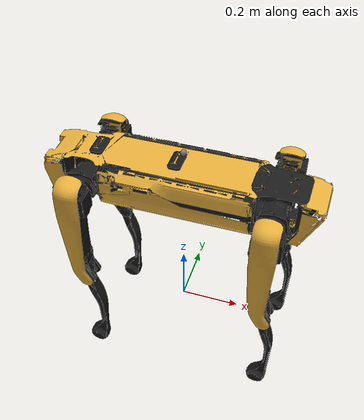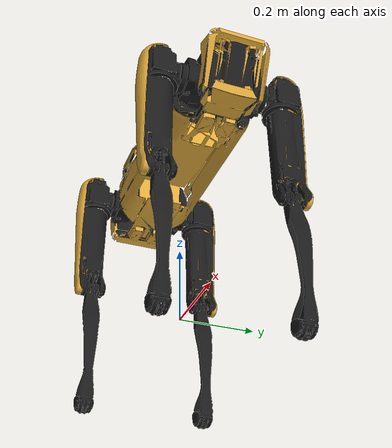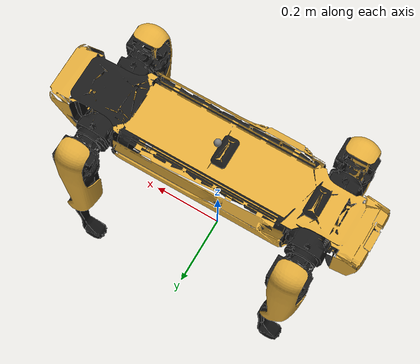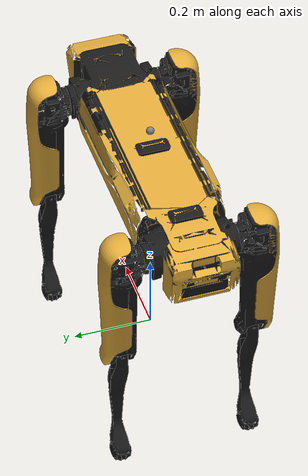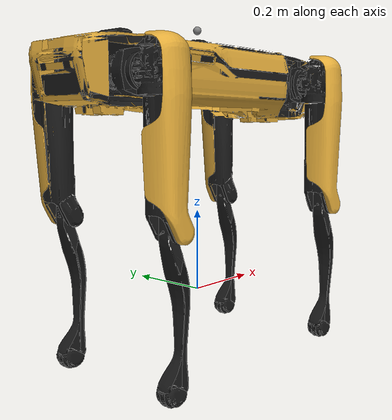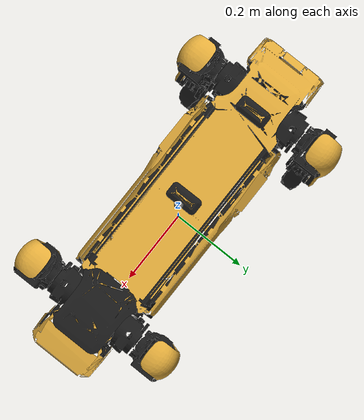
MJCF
<mujoco model="spot">
  <compiler angle="radian" meshdir="meshes/"/>

  <default>
    <default class="spot">
      <geom solref="0.004 1"/>
      <joint actuatorfrcrange="-1000 1000"/>
      <position kp="60" kv="1.5" inheritrange="1"/>
      <default class="visual">
        <geom group="2" type="mesh" contype="0" conaffinity="0"/>
      </default>
      <default class="collision">
        <geom group="3" type="mesh"/>
        <default class="foot">
          <geom type="sphere" size="0.036" pos="0 0 -0.3365" priority="1" condim="6" solimp="0.9 0.95 0.001"
            friction="2.0 0.02 0.01"/>
        </default>
      </default>
    </default>
  </default>

  <asset>
    <material name="BlackAbs" rgba="0.1 0.1 0.1 1"/>
    <material name="wrap" rgba="0.878431 0.666666 0.227450 1"/>

    <mesh file="body_0.obj"/>
    <mesh file="body_1.obj"/>
    <mesh file="front_left_hip.obj"/>
    <mesh file="front_left_upper_leg_0.obj"/>
    <mesh file="front_left_upper_leg_1.obj"/>
    <mesh file="front_left_lower_leg.obj"/>
    <mesh file="front_right_hip.obj"/>
    <mesh file="front_right_upper_leg_0.obj"/>
    <mesh file="front_right_upper_leg_1.obj"/>
    <mesh file="front_right_lower_leg.obj"/>
    <mesh file="rear_left_hip.obj"/>
    <mesh file="rear_left_upper_leg_0.obj"/>
    <mesh file="rear_left_upper_leg_1.obj"/>
    <mesh file="rear_left_lower_leg.obj"/>
    <mesh file="rear_right_hip.obj"/>
    <mesh file="rear_right_upper_leg_0.obj"/>
    <mesh file="rear_right_upper_leg_1.obj"/>
    <mesh file="rear_right_lower_leg.obj"/>
    <mesh file="body_collision.obj"/>
    <mesh file="left_upper_leg_collision.obj"/>
    <mesh file="left_lower_leg_collision.obj"/>
    <mesh file="right_upper_leg_collision.obj"/>
    <mesh file="right_lower_leg_collision.obj"/>
  </asset>

  <worldbody>
    <body name="base_link" childclass="spot" pos="0 0 0.52">
      <freejoint name="base_free"/>
      <!-- Mass/inertia scaled ~0.65x to ~32.5 kg total (real Spot); Menagerie's 50.34 kg is too heavy
           for the policy's soft PD (kp=60) and sagged the default stance. See the file-header note. -->
      <inertial pos="0.0063944 -9.81216e-05 0.000911379" mass="21.22" diaginertia="0.08486 0.08486 0.08486"/>
      <!-- Lidar mount for the nav2 scan: on the back, ~0.64 m off the ground when standing. -->
      <site name="lidar" pos="0 0 0.12" size="0.01"/>
      <geom mesh="body_0" material="BlackAbs" class="visual"/>
      <geom mesh="body_1" material="wrap" class="visual"/>
      <geom mesh="body_collision" class="collision"/>
      <body name="fl_hip" pos="0.29785 0.055 0">
        <inertial pos="-0.00537435 0.0128418 9.87523e-05" quat="1 1 -1 1" mass="1.085"
          diaginertia="0.001463 0.001365 0.001170"/>
        <joint name="fl_hx" axis="1 0 0" range="-0.785398 0.785398"/>
        <geom material="BlackAbs" mesh="front_left_hip" class="visual"/>
        <body name="fl_uleg" pos="0 0.1108 0">
          <inertial pos="0.00514237 -0.00243237 -0.121009" mass="1.511" diaginertia="0.017793 0.017661 0.001839"/>
          <joint name="fl_hy" axis="0 1 0" range="-0.898845 2.29511"/>
          <geom mesh="front_left_upper_leg_0" material="wrap" class="visual"/>
          <geom mesh="front_left_upper_leg_1" material="BlackAbs" class="visual"/>
          <geom mesh="left_upper_leg_collision" class="collision"/>
          <body name="fl_lleg" pos="0.025 0 -0.32">
            <inertial pos="0.00225794 4.6076e-05 -0.180082" quat="1 0 0 1" mass="0.226"
              diaginertia="0.002615 0.002582 0.0000964"/>
            <joint name="fl_kn" axis="0 1 0" range="-2.7929 -0.254402"/>
            <geom material="BlackAbs" mesh="front_left_lower_leg" class="visual"/>
            <geom mesh="left_lower_leg_collision" class="collision"/>
            <geom name="FL" class="foot"/>
          </body>
        </body>
      </body>
      <body name="fr_hip" pos="0.29785 -0.055 0">
        <inertial pos="-0.00537435 -0.0128418 -9.87523e-05" quat="1 1 -1 1" mass="1.085"
          diaginertia="0.001463 0.001365 0.001170"/>
        <joint name="fr_hx" axis="1 0 0" range="-0.785398 0.785398"/>
        <geom material="BlackAbs" mesh="front_right_hip" class="visual"/>
        <body name="fr_uleg" pos="0 -0.1108 0">
          <inertial pos="0.00514237 0.00243237 -0.121009" mass="1.511" diaginertia="0.017793 0.017661 0.001839"/>
          <joint name="fr_hy" axis="0 1 0" range="-0.898845 2.24363"/>
          <geom mesh="front_right_upper_leg_0" material="wrap" class="visual"/>
          <geom mesh="front_right_upper_leg_1" material="BlackAbs" class="visual"/>
          <geom mesh="right_upper_leg_collision" class="collision"/>
          <body name="fr_lleg" pos="0.025 0 -0.32">
            <inertial pos="0.00225794 4.6076e-05 -0.180082" quat="1 0 0 1" mass="0.226"
              diaginertia="0.002615 0.002582 0.0000964"/>
            <joint name="fr_kn" axis="0 1 0" range="-2.7929 -0.255648"/>
            <geom material="BlackAbs" mesh="front_right_lower_leg" class="visual"/>
            <geom mesh="right_lower_leg_collision" class="collision"/>
            <geom name="FR" class="foot"/>
          </body>
        </body>
      </body>
      <body name="hl_hip" pos="-0.29785 0.055 0">
        <inertial pos="0.00537435 0.0128418 -9.87523e-05" quat="1 1 -1 1" mass="1.085"
          diaginertia="0.001463 0.001365 0.001170"/>
        <joint name="hl_hx" axis="1 0 0" range="-0.785398 0.785398"/>
        <geom material="BlackAbs" mesh="rear_left_hip" class="visual"/>
        <body name="hl_uleg" pos="0 0.1108 0">
          <inertial pos="0.00514237 -0.00243237 -0.121009" mass="1.511" diaginertia="0.017793 0.017661 0.001839"/>
          <joint name="hl_hy" axis="0 1 0" range="-0.898845 2.29511"/>
          <geom mesh="rear_left_upper_leg_0" material="wrap" class="visual"/>
          <geom mesh="rear_left_upper_leg_1" material="BlackAbs" class="visual"/>
          <geom mesh="left_upper_leg_collision" class="collision"/>
          <body name="hl_lleg" pos="0.025 0 -0.32">
            <inertial pos="0.00225794 4.6076e-05 -0.180082" quat="1 0 0 1" mass="0.226"
              diaginertia="0.002615 0.002582 0.0000964"/>
            <joint name="hl_kn" axis="0 1 0" range="-2.7929 -0.247067"/>
            <geom material="BlackAbs" mesh="rear_left_lower_leg" class="visual"/>
            <geom mesh="left_lower_leg_collision" class="collision"/>
            <geom name="HL" class="foot"/>
          </body>
        </body>
      </body>
      <body name="hr_hip" pos="-0.29785 -0.055 0">
        <inertial pos="0.00537435 -0.0128418 9.87523e-05" quat="1 1 -1 1" mass="1.085"
          diaginertia="0.001463 0.001365 0.001170"/>
        <joint name="hr_hx" axis="1 0 0" range="-0.785398 0.785398"/>
        <geom material="BlackAbs" mesh="rear_right_hip" class="visual"/>
        <body name="hr_uleg" pos="0 -0.1108 0">
          <inertial pos="0.00514237 0.00243237 -0.121009" mass="1.511" diaginertia="0.017793 0.017661 0.001839"/>
          <joint name="hr_hy" axis="0 1 0" range="-0.898845 2.29511"/>
          <geom mesh="rear_right_upper_leg_0" material="wrap" class="visual"/>
          <geom mesh="rear_right_upper_leg_1" material="BlackAbs" class="visual"/>
          <geom mesh="right_upper_leg_collision" class="collision"/>
          <body name="hr_lleg" pos="0.025 0 -0.32">
            <inertial pos="0.00225794 4.6076e-05 -0.180082" quat="1 0 0 1" mass="0.226"
              diaginertia="0.002615 0.002582 0.0000964"/>
            <joint name="hr_kn" axis="0 1 0" range="-2.7929 -0.248282"/>
            <geom material="BlackAbs" mesh="rear_right_lower_leg" class="visual"/>
            <geom mesh="right_lower_leg_collision" class="collision"/>
            <geom name="HR" class="foot"/>
          </body>
        </body>
      </body>
    </body>
  </worldbody>

  <contact>
    <exclude body1="base_link" body2="fl_uleg"/>
    <exclude body1="base_link" body2="fr_uleg"/>
    <exclude body1="base_link" body2="hl_uleg"/>
    <exclude body1="base_link" body2="hr_uleg"/>
  </contact>

  <actuator>
    <position class="spot" name="fl_hx" joint="fl_hx" forcerange="-45 45"/>
    <position class="spot" name="fl_hy" joint="fl_hy" forcerange="-45 45"/>
    <position class="spot" name="fl_kn" joint="fl_kn" forcerange="-115 115"/>
    <position class="spot" name="fr_hx" joint="fr_hx" forcerange="-45 45"/>
    <position class="spot" name="fr_hy" joint="fr_hy" forcerange="-45 45"/>
    <position class="spot" name="fr_kn" joint="fr_kn" forcerange="-115 115"/>
    <position class="spot" name="hl_hx" joint="hl_hx" forcerange="-45 45"/>
    <position class="spot" name="hl_hy" joint="hl_hy" forcerange="-45 45"/>
    <position class="spot" name="hl_kn" joint="hl_kn" forcerange="-115 115"/>
    <position class="spot" name="hr_hx" joint="hr_hx" forcerange="-45 45"/>
    <position class="spot" name="hr_hy" joint="hr_hy" forcerange="-45 45"/>
    <position class="spot" name="hr_kn" joint="hr_kn" forcerange="-115 115"/>
  </actuator>
</mujoco>
